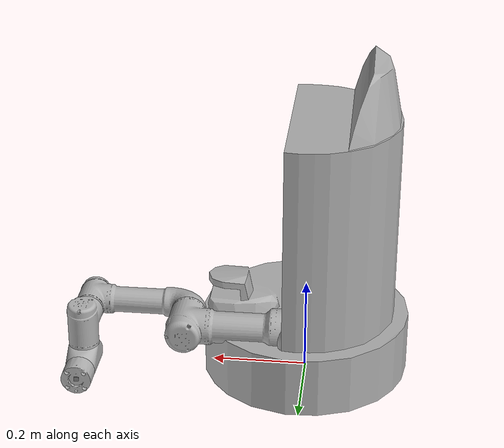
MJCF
<mujoco model="ur3e">
    <compiler angle="radian" meshdir="./mesh/ur3e/collision/" texturedir="./mesh/ur3e/visual/" />
    <option collision="predefined" />
    <asset>
        <mesh name="base"     file="base.stl" />
        <mesh name="shoulder" file="shoulder.stl" />
        <mesh name="upperarm" file="upperarm.stl" />
        <mesh name="forearm"  file="forearm.stl" />
        <mesh name="wrist1"   file="wrist1.stl" />
        <mesh name="wrist2"   file="wrist2.stl" />
        <mesh name="wrist3"   file="wrist3.stl" />
        <texture name="texplane" type="2d" builtin="checker" rgb1=".2 .3 .4" rgb2=".1 0.15 0.2" width="512" height="512"/>
        <material name="MatPlane" reflectance="0.3" texture="texplane" texrepeat="1 1" texuniform="true"/>
    </asset>
    <worldbody>
        <!-- Lights -->
        <light name="light0" diffuse="1 1 1" pos="0 0 3" dir="0 0 -1" castshadow="false"/>
        <light name="light1" diffuse="1 1 1" pos="1 -1 -.1" dir="-1 1 1" castshadow="false"/>
        <light name="light2" diffuse="1 1 1" pos="1.5 0 3"  dir="0 0 -1" castshadow="false"/>
        <!-- Environment -->
        <geom name="floor" pos="0 0 -.913" size="5 5 .125" type="plane" material="MatPlane" condim="3"/>
        <body name="table" pos="0.4 0 0" >
            <geom name="table" pos="0.0 0 0" type="plane" size=".5 .6 0.1" group = "1" rgba=".1 .1 .1 1" />
        </body>
        <!-- Robot -->
        <body name="base" pos="0 0 0">
            <geom type="mesh" rgba="0.7 0.7 0.7 1" mesh="base" />
            <body name="shoulder_link" pos="0 0 0.152">
                <inertial pos="0 0 0" mass="2" diaginertia="0.00809316 0.00809316 0.005625" />
                <joint name="shoulder_pan_joint" pos="0 0 0" axis="0 0 1" limited="true" range="-3.14159 3.14159" />
                <geom name="shoulder" type="mesh" rgba="0.7 0.7 0.7 1" mesh="shoulder" />
                <body name="upper_arm_link" pos="0 0.12 0" quat="0.707107 0 0.707107 0">
                    <inertial pos="0 0 0.122" mass="3.42" diaginertia="0.0217771 0.0217771 0.00961875" />
                    <joint name="shoulder_lift_joint" pos="0 0 0" axis="0 1 0" limited="true" range="-3.14159 3.14159" />
                    <geom name="upperarm" type="mesh" rgba="0.7 0.7 0.7 1" mesh="upperarm" />
                    <body name="forearm_link" pos="0 -0.093 0.244">
                        <inertial pos="0 0 0.1065" mass="1.26" diaginertia="0.00653562 0.00653562 0.00354375" />
                        <joint name="elbow_joint" pos="0 0 0" axis="0 1 0" limited="true" range="-3.14159 3.14159" />
                        <geom name="forearm" type="mesh" rgba="0.7 0.7 0.7 1" mesh="forearm" />
                        <body name="wrist_1_link" pos="0 0 0.213" quat="0.707107 0 0.707107 0">
                            <inertial pos="0 0 0" quat="0.5 0.5 -0.5 0.5" mass="0.8" diaginertia="0.00225 0.002085 0.002085" />
                            <joint name="wrist_1_joint" pos="0 0 0" axis="0 1 0" limited="true" range="-3.14159 3.14159" />
                            <geom name="wrist1" type="mesh" rgba="0.7 0.7 0.7 1" mesh="wrist1" />
                            <body name="wrist_2_link" pos="0 0.104 0">
                                <inertial pos="0 0 0" quat="0.5 0.5 -0.5 0.5" mass="0.8" diaginertia="0.00225 0.002085 0.002085" />
                                <joint name="wrist_2_joint" pos="0 0 0" axis="0 0 1" limited="true" range="-3.14159 3.14159" />
                                <geom name="wrist2" type="mesh" rgba="0.7 0.7 0.7 1" mesh="wrist2" />
                                <body name="wrist_3_link" pos="0 0 0.085">
                                    <inertial pos="0 0.000233618 0" quat="0.5 0.5 -0.5 0.5" mass="0.351" diaginertia="0.000991097 0.000918909 0.000912204" />
                                    <joint name="wrist_3_joint" pos="0 0 0" axis="0 1 0" limited="true" range="-3.14159 3.14159" />
                                    <geom name="wrist3" type="mesh" rgba="0.7 0.7 0.7 1" mesh="wrist3" />
                                    <geom size="0.005 0.005 0.005" pos="0 0.082 0" quat="0.707107 0 0 0.707107" type="box" />
                                </body>
                            </body>
                        </body>
                    </body>
                </body>
            </body>
          </body>
    </worldbody>
    <!-- Actuators -->
    <actuator>
      <motor name="shoulder_pan_motor"  joint="shoulder_pan_joint"  ctrllimited="true" ctrlrange="-330 330" />
      <motor name="shoulder_lift_motor" joint="shoulder_lift_joint" ctrllimited="true" ctrlrange="-330 330" />
      <motor name="elbow_motor"         joint="elbow_joint"         ctrllimited="true" ctrlrange="-150 150" />
      <motor name="wrist_1_motor"       joint="wrist_1_joint"       ctrllimited="true" ctrlrange="-54 54" />
      <motor name="wrist_2_motor"       joint="wrist_2_joint"       ctrllimited="true" ctrlrange="-54 54" />
      <motor name="wrist_3_motor"       joint="wrist_3_joint"       ctrllimited="true" ctrlrange="-54 54" />
    </actuator>
    <!-- Contacts -->
    <contact>
        <pair geom1='wrist3'    geom2='table'  />
        <pair geom1='wrist2'    geom2='table'  />
        <pair geom1='wrist1'    geom2='table'  />
        <pair geom1='forearm'   geom2='table'  />
        <pair geom1='upperarm'  geom2='table'  />
    </contact>
    <!-- Key frames -->
    <keyframe>
        <key name="init_pose" qpos="0.0392 0.482 -0.451 -1.62 0.0587 1.56" />
    </keyframe>
</mujoco>
